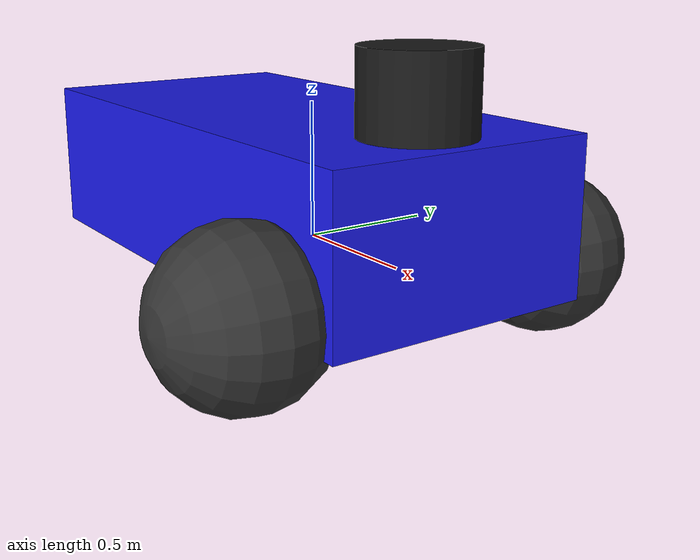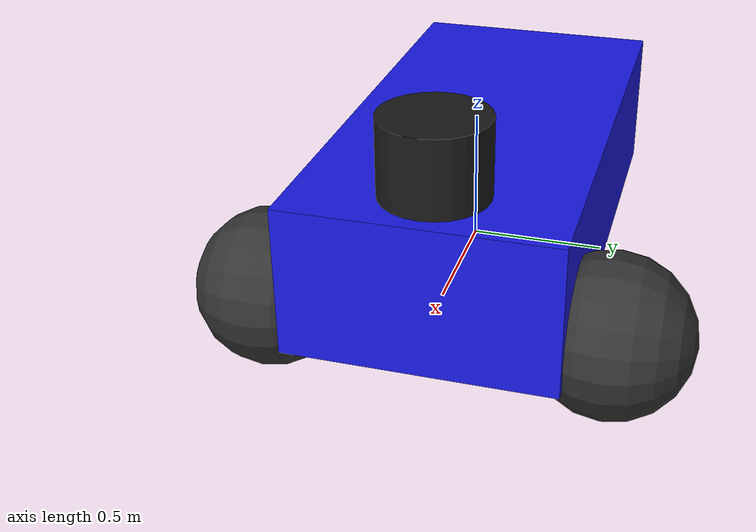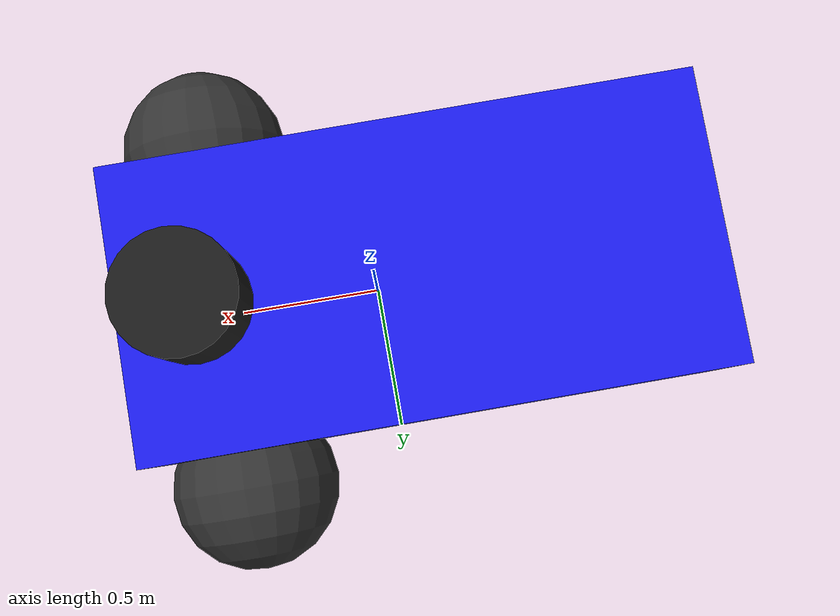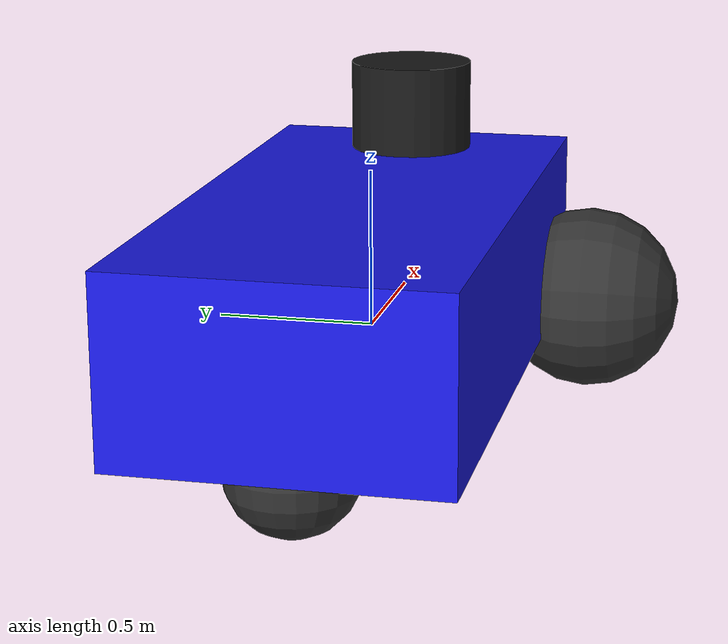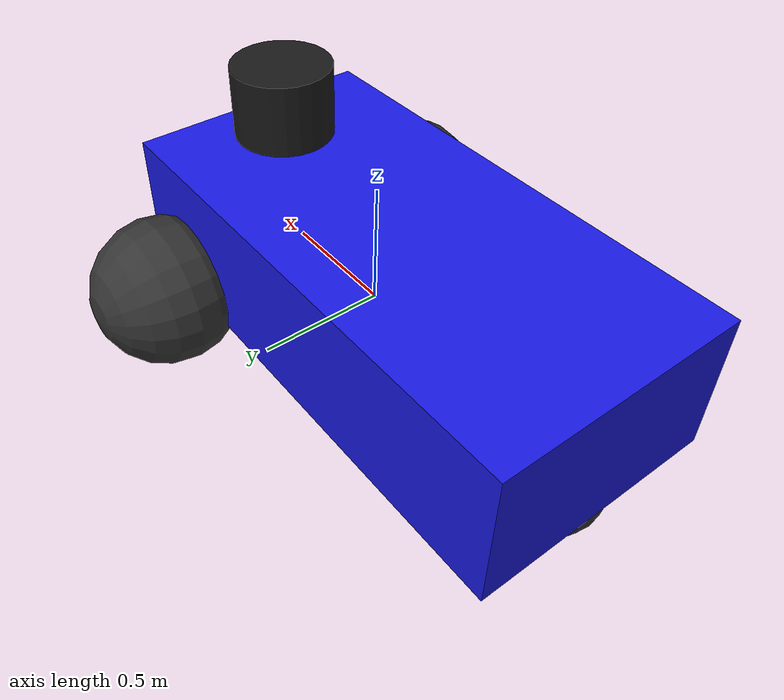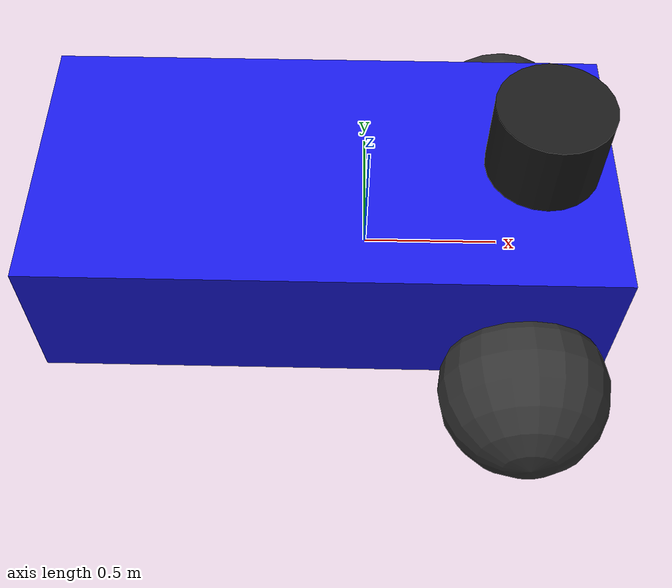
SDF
<?xml version="1.0" ?>
<sdf version="1.8">
    <model name='vehicle'>
      <link name='chassis'>
        <pose>-0.151427 -0 0.175 0 -0 0</pose>
        <inertial>
          <mass>1.14395</mass>
          <inertia>
            <ixx>0.126164</ixx>
            <ixy>0</ixy>
            <ixz>0</ixz>
            <iyy>0.416519</iyy>
            <iyz>0</iyz>
            <izz>0.481014</izz>
          </inertia>
        </inertial>
        <visual name="chassis_visual">
          <geometry>
            <box>
              <size>2.01142 1 0.568726</size>
            </box>
          </geometry>
          <material>
            <ambient>0.05 0.05 0.6 1</ambient>
            <diffuse>0.1 0.1 0.9 1</diffuse>
            <specular>0.5 0.5 0.5 1</specular>
          </material>
        </visual>
        <collision name='collision_chassis'>
          <geometry>
            <box>
              <size>2.01142 1 0.568726</size>
            </box>
          </geometry>
        </collision>
      </link>

      <link name='lidar_link'>
        <pose>0.6 0 0.6 0 0 0</pose>
        <inertial>
          <mass>0.1</mass>
          <inertia>
            <ixx>0.0001</ixx>
            <ixy>0</ixy>
            <ixz>0</ixz>
            <iyy>0.0001</iyy>
            <iyz>0</iyz>
            <izz>0.0001</izz>
          </inertia>
        </inertial>

        <visual name='lidar_visual'>
          <geometry>
            <cylinder>
              <radius>0.2</radius>
              <length>0.3</length>
            </cylinder>
          </geometry>
          <material>
            <ambient>0.1 0.1 0.1 1</ambient>
            <diffuse>0.1 0.1 0.1 1</diffuse>
            <specular>0.1 0.1 0.1 1</specular>
          </material>
        </visual>

        <sensor name="gpu_lidar" type="gpu_lidar">
          <topic>/lidar</topic>
          <update_rate>20</update_rate>
          <visualize>true</visualize>
          <lidar>
            <scan>
              <horizontal>
                <samples>360</samples> <resolution>1</resolution> <min_angle>-3.14159</min_angle>
                <max_angle>3.14159</max_angle>
              </horizontal>
            </scan>
            <range>
              <min>0.2</min>    <max>12.0</max>   <resolution>0.01</resolution>
            </range>
            <noise>
              <type>gaussian</type>
              <mean>0.0</mean>
              <stddev>0.02</stddev>
            </noise>
          </lidar>
        </sensor>
      </link>

      <link name='imu_link'>
        <pose>0 0 0.3 0 0 0</pose>
        <inertial>
          <mass>0.01</mass>
          <inertia>
            <ixx>1.6e-6</ixx>
            <ixy>0</ixy>
            <ixz>0</ixz>
            <iyy>1.6e-6</iyy>
            <iyz>0</iyz>
            <izz>1.6e-6</izz>
          </inertia>
        </inertial>

        <sensor name="imu_sensor" type="imu">
          <topic>/imu</topic>
          <update_rate>20</update_rate>
          <always_on>true</always_on>
          <visualize>true</visualize>
          <imu>
              <angular_velocity>
                <x>
                  <noise type='gaussian'>
                    <mean>0.0</mean>
                    <stddev>0.005</stddev>
                  </noise>
                </x>
                <y>
                  <noise type='gaussian'>
                    <mean>0.0</mean>
                    <stddev>0.005</stddev>
                  </noise>
                </y>
                <z>
                  <noise type='gaussian'>
                    <mean>0.0</mean>
                    <stddev>0.005</stddev>
                  </noise>
                </z>
              </angular_velocity>
              <linear_acceleration>
                <x>
                  <noise type='gaussian'>
                    <mean>0.0</mean>
                    <stddev>0.01</stddev>
                  </noise>
                </x>
                <y>
                  <noise type='gaussian'>
                    <mean>0.0</mean>
                    <stddev>0.01</stddev>
                  </noise>
                </y>
                <z>
                  <noise type='gaussian'>
                    <mean>0.0</mean>
                    <stddev>0.01</stddev>
                  </noise>
                </z>
              </linear_acceleration>
          </imu>
        </sensor>
      </link>

      <link name='left_wheel'>
        <pose>0.554283 0.625029 -0.025 -1.5707 0 0</pose>
        <inertial>
          <mass>2</mass>
          <inertia>
            <ixx>0.145833</ixx>
            <ixy>0</ixy>
            <ixz>0</ixz>
            <iyy>0.145833</iyy>
            <iyz>0</iyz>
            <izz>0.125</izz>
          </inertia>
        </inertial>
        <visual name='visual_left_wheel'>
          <geometry>
            <sphere>
              <radius>0.3</radius>
            </sphere>
          </geometry>
          <material>
            <ambient>0.2 0.2 0.2 1</ambient>
            <diffuse>0.2 0.2 0.2 1</diffuse>
            <specular>0.2 0.2 0.2 1</specular>
          </material>
        </visual>
        <collision name='collision_left_wheel'>
          <geometry>
            <sphere>
              <radius>0.3</radius>
            </sphere>
          </geometry>
          <surface>
            <friction>
              <ode>
                <mu>1.0</mu>   <mu2>1.0</mu2>  <slip1>0.0</slip1> <slip2>0.0</slip2> </ode>
            </friction>
            <contact>
              <ode>
                <min_depth>0.001</min_depth>
                <kp>1e8</kp>
              </ode>
            </contact>
        </surface>
        </collision>
      </link>

      <link name='right_wheel'>
        <pose>0.554282 -0.625029 -0.025 -1.5707 0 0</pose>
        <inertial>
          <mass>2</mass>
          <inertia>
            <ixx>0.145833</ixx>
            <ixy>0</ixy>
            <ixz>0</ixz>
            <iyy>0.145833</iyy>
            <iyz>0</iyz>
            <izz>0.125</izz>
          </inertia>
        </inertial>
        <visual name='visual_right_wheel'>
          <geometry>
            <sphere>
              <radius>0.3</radius>
            </sphere>
          </geometry>
          <material>
            <ambient>0.2 0.2 0.2 1</ambient>
            <diffuse>0.2 0.2 0.2 1</diffuse>
            <specular>0.2 0.2 0.2 1</specular>
          </material>
        </visual>
        <collision name='collision_right_wheel'>
          <geometry>
            <sphere>
              <radius>0.3</radius>
            </sphere>
          </geometry>
            <surface>
              <friction>
                <ode>
                  <mu>1.0</mu>   <mu2>1.0</mu2>  <slip1>0.0</slip1> <slip2>0.0</slip2> </ode>
              </friction>
              <contact>
                <ode>
                  <min_depth>0.001</min_depth>
                  <kp>1e8</kp>
                </ode>
              </contact>
            </surface>
        </collision>
      </link>

      <link name='caster'>
        <pose>-0.957138 -0 -0.125 0 -0 0</pose>
        <inertial>
          <mass>1</mass>
          <inertia>
            <ixx>0.1</ixx>
            <ixy>0</ixy>
            <ixz>0</ixz>
            <iyy>0.1</iyy>
            <iyz>0</iyz>
            <izz>0.1</izz>
          </inertia>
        </inertial>
        <visual name='visual_caster'>
          <geometry>
            <sphere>
              <radius>0.2</radius>
            </sphere>
          </geometry>
          <material>
            <ambient>0.2 0.2 0.2 1</ambient>
            <diffuse>0.2 0.2 0.2 1</diffuse>
            <specular>0.2 0.2 0.2 1</specular>
          </material>
        </visual>
        <collision name='collision_caster'>
          <geometry>
            <sphere>
              <radius>0.2</radius>
            </sphere>
          </geometry>
        </collision>
      </link>

      <joint name='lidar_joint' type='fixed'>
        <parent>chassis</parent>
        <child>lidar_link</child>
      </joint>

      <joint name='imu_joint' type='fixed'>
        <parent>chassis</parent>
        <child>imu_link</child>
      </joint>

      <joint name='left_wheel_joint' type='revolute'>
        <parent>chassis</parent>
        <child>left_wheel</child>
        <axis>
          <xyz>0 0 1</xyz>  <!-- rotate around Y to roll forward -->
          <limit>
            <lower>-1.79769e+308</lower>
            <upper>1.79769e+308</upper>
          </limit>
        </axis>
      </joint>

      <joint name='right_wheel_joint' type='revolute'>
        <parent>chassis</parent>
        <child>right_wheel</child>
        <axis>
          <xyz>0 0 1</xyz>  <!-- rotate around Y to roll forward -->
          <limit>
            <lower>-1.79769e+308</lower>
            <upper>1.79769e+308</upper>
          </limit>
        </axis>
      </joint>

      <joint name='caster_wheel' type='ball'>
        <parent>chassis</parent>
        <child>caster</child>
      </joint>

      <plugin
        filename="ignition-gazebo-diff-drive-system"
        name="ignition::gazebo::systems::DiffDrive">
        <odom_noise_xyz>0.001 0.001 0.001</odom_noise_xyz>
        <odom_noise_rpy>0.001 0.001 0.001</odom_noise_rpy>
        <left_joint>left_wheel_joint</left_joint>
        <right_joint>right_wheel_joint</right_joint>
        <wheel_separation>1.25</wheel_separation>
        <wheel_radius>0.3</wheel_radius>
        <odom_publish_frequency>20</odom_publish_frequency>
        <max_linear_acceleration>1</max_linear_acceleration>
        <min_linear_acceleration>-1</min_linear_acceleration>
        <max_angular_acceleration>2</max_angular_acceleration>
        <min_angular_acceleration>-2</min_angular_acceleration>
        <max_linear_velocity>0.5</max_linear_velocity>
        <min_linear_velocity>-0.5</min_linear_velocity>
        <max_angular_velocity>1</max_angular_velocity>
        <min_angular_velocity>-1</min_angular_velocity>
      </plugin>

      <plugin filename="libignition-gazebo-pose-publisher-system.so"
              name="ignition::gazebo::systems::PosePublisher">
        <publish_link_pose>true</publish_link_pose>
        <publish_sensor_pose>true</publish_sensor_pose>
        <publish_collision_pose>false</publish_collision_pose>
        <publish_visual_pose>false</publish_visual_pose>
        <publish_nested_model_pose>false</publish_nested_model_pose>
        <use_pose_vector_msg>true</use_pose_vector_msg>
        <static_publisher>true</static_publisher>
        <update_frequency>20.0</update_frequency>
      </plugin>

    </model>
</sdf>
